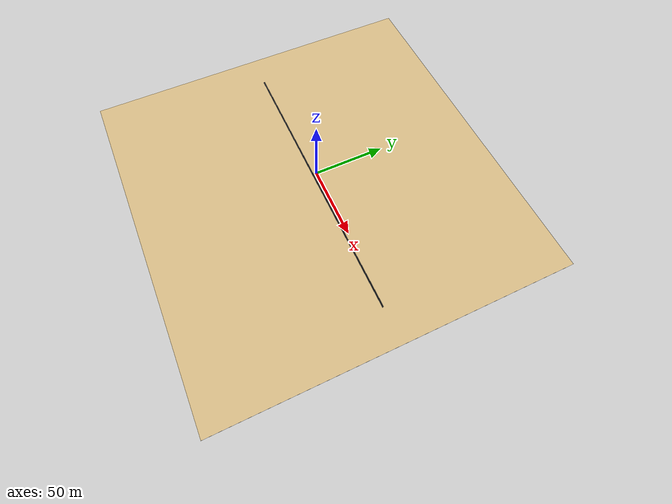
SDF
<?xml version="1.0" ?>
<sdf version="1.6">
  <world name="ocean_with_black_cylinder">

    <scene>
      <grid>false</grid>
    </scene>

    <physics name="10ms" type="ode">
      <max_step_size>0.01</max_step_size>
      <real_time_factor>1.0</real_time_factor>
    </physics>
    <plugin
      filename="ignition-gazebo-physics-system"
      name="ignition::gazebo::systems::Physics">
    </plugin>
    <plugin
      filename="ignition-gazebo-user-commands-system"
      name="ignition::gazebo::systems::UserCommands">
    </plugin>
    <plugin
      filename="ignition-gazebo-scene-broadcaster-system"
      name="ignition::gazebo::systems::SceneBroadcaster">
    </plugin>
    <plugin
      filename="ignition-gazebo-imu-system"
      name="ignition::gazebo::systems::Imu">
    </plugin>
    <plugin
      filename="ignition-gazebo-sensors-system"
      name="ignition::gazebo::systems::Sensors">
      <render_engine>ogre2</render_engine>
    </plugin>
    <plugin
      filename="ignition-gazebo-buoyancy-system"
      name="ignition::gazebo::systems::Buoyancy">
      <graded_buoyancy>
        <default_density>1000</default_density>
        <density_change>
          <above_depth>0</above_depth>
          <density>1</density>
        </density_change>
      </graded_buoyancy>
    </plugin>

    <light type="directional" name="sun">
      <cast_shadows>true</cast_shadows>
      <pose>0 0 10 0 0 0</pose>
      <diffuse>1 1 1 1</diffuse>
      <specular>0.5 0.5 0.5 1</specular>
      <attenuation>
        <range>1000</range>
        <constant>0.9</constant>
        <linear>0.01</linear>
        <quadratic>0.001</quadratic>
      </attenuation>
      <direction>-0.5 0.1 -0.9</direction>
    </light>

    <model name="water_plane">
      <static>true</static>
      <link name="link">
        <visual name="visual">
          <geometry>
            <plane>
              <size>250 250</size>
              <normal>0 0 1</normal>
            </plane>
          </geometry>
          <material>
            <ambient>0.1 0.1 0.8 0.5</ambient>
            <diffuse>0.1 0.1 0.8 0.5</diffuse>
            <specular>0.5 0.5 0.5 0.5</specular>
            <script>
              <uri>file://media/materials/scripts/gazebo.material</uri>
              <name>Gazebo/TranquilWater</name>
            </script>
          </material>
        </visual>
      </link>
      <pose>0 0 0 0 0 0</pose>
    </model>

    <model name="seafloor">
      <static>true</static>
      <pose>0 0 -10 0 0 0</pose>
      <link name="link">
        <collision name="collision">
          <geometry>
            <plane>
              <normal>0 0 1</normal>
              <size>250 250</size>
            </plane>
          </geometry>
        </collision>
        <visual name="visual">
          <geometry>
            <plane>
              <normal>0 0 1</normal>
              <size>250 250</size>
            </plane>
          </geometry>
          <material>
            <ambient>0.8 0.7 0.5 1</ambient>
            <diffuse>0.8 0.7 0.5 1</diffuse>
            <specular>0.1 0.1 0.1 1</specular>
          </material>
        </visual>
      </link>
    </model>

    <model name="seabed_cylinder_pipe">
      <static>true</static>
      <pose>0 0 -9.5 0 1.5707 0</pose>
      <link name="link">
        <collision name="collision">
          <geometry>
            <cylinder>
              <radius>0.5</radius>
              <length>200</length>
            </cylinder>
          </geometry>
        </collision>
        <visual name="visual">
          <geometry>
            <cylinder>
              <radius>0.5</radius>
              <length>200</length>
            </cylinder>
          </geometry>
          <material>
            <ambient>0 0 0 1</ambient>
            <diffuse>0 0 0 1</diffuse>
            <specular>0.1 0.1 0.1 1</specular>
          </material>
        </visual>
      </link>
    </model>

  </world>
</sdf>
